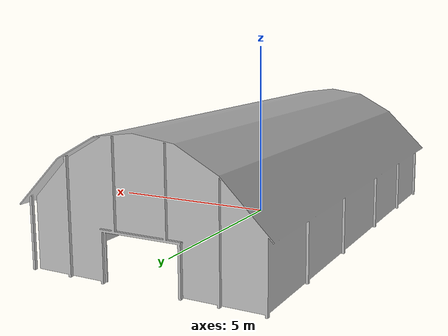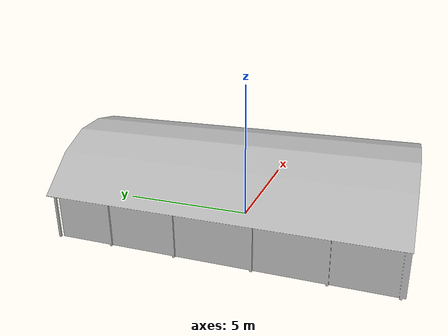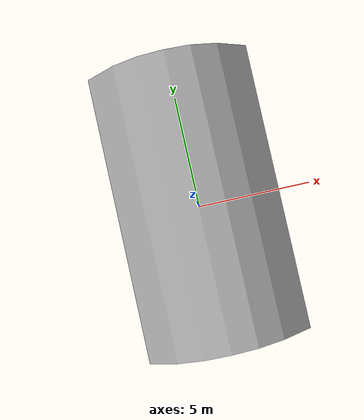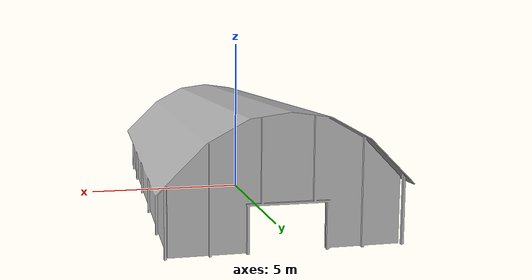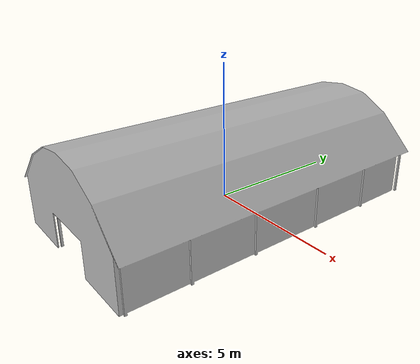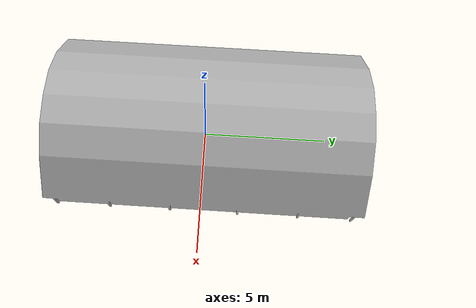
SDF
<?xml version="1.0"?>
<sdf version="1.6">
  <model name="red_barn">
    <static>true</static>
    <link name="link">
      <visual name="visual">
        <geometry>
          <mesh>
            <uri>model://red_barn/meshes/red_barn.dae</uri>
            <scale>1 1 1</scale>
          </mesh>
        </geometry>
      </visual>
      <collision name="collision">
        <geometry>
          <mesh>
            <uri>model://red_barn/meshes/red_barn.dae</uri>
            <scale>1 1 1</scale>
          </mesh>
        </geometry>
      </collision>
    </link>
  </model>
</sdf>
